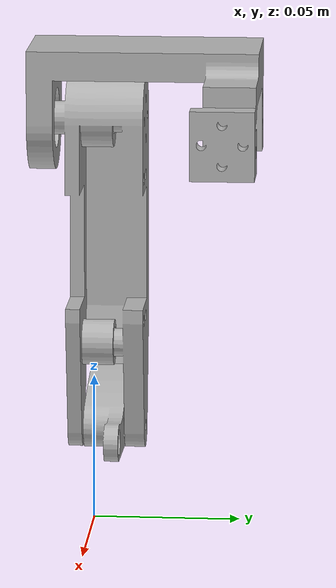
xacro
<?xml version="1.0" ?>
<robot name="leg2" xmlns:xacro="http://www.ros.org/wiki/xacro">

<xacro:include filename="$(find leg2_description)/urdf/materials.xacro" />
<xacro:include filename="$(find leg2_description)/urdf/leg2.trans" />
<xacro:include filename="$(find leg2_description)/urdf/leg2.gazebo" />
<link name="base_link">
  <inertial>
    <origin rpy="0 0 0" xyz="-0.035178677173068926 0.020361442759306778 0.14526924522292778"/>
    <mass value="0.07098555583740974"/>
    <inertia ixx="6.2e-05" ixy="-1e-05" ixz="4e-06" iyy="3.1e-05" iyz="2e-06" izz="7.5e-05"/>
  </inertial>
  <visual>
    <origin rpy="0 0 0" xyz="0 0 0"/>
    <geometry>
      <mesh filename="package://leg2_description/meshes/base_link.stl" scale="0.001 0.001 0.001"/>
    </geometry>
    <material name="silver"/>
  </visual>
  <collision>
    <origin rpy="0 0 0" xyz="0 0 0"/>
    <geometry>
      <mesh filename="package://leg2_description/meshes/base_link.stl" scale="0.001 0.001 0.001"/>
    </geometry>
  </collision>
</link>

<link name="thigh_1">
  <inertial>
    <origin rpy="0 0 0" xyz="-0.002104361960605823 0.017651626772934526 -0.042462025219402164"/>
    <mass value="0.058833278634128135"/>
    <inertia ixx="9.7e-05" ixy="0.0" ixz="-0.0" iyy="9.5e-05" iyz="1e-06" izz="9e-06"/>
  </inertial>
  <visual>
    <origin rpy="0 0 0" xyz="0.04079 0.016228 -0.132102"/>
    <geometry>
      <mesh filename="package://leg2_description/meshes/thigh_1.stl" scale="0.001 0.001 0.001"/>
    </geometry>
    <material name="silver"/>
  </visual>
  <collision>
    <origin rpy="0 0 0" xyz="0.04079 0.016228 -0.132102"/>
    <geometry>
      <mesh filename="package://leg2_description/meshes/thigh_1.stl" scale="0.001 0.001 0.001"/>
    </geometry>
  </collision>
</link>

<link name="tibia_1">
  <inertial>
    <origin rpy="0 0 0" xyz="-0.04986439883191778 0.008578809581268974 0.0052722228367173135"/>
    <mass value="0.028136989763679243"/>
    <inertia ixx="1e-06" ixy="-0.0" ixz="1e-06" iyy="4.3e-05" iyz="0.0" izz="4.2e-05"/>
  </inertial>
  <visual>
    <origin rpy="0 0 0" xyz="0.04079 0.007228 -0.022102"/>
    <geometry>
      <mesh filename="package://leg2_description/meshes/tibia_1.stl" scale="0.001 0.001 0.001"/>
    </geometry>
    <material name="silver"/>
  </visual>
  <collision>
    <origin rpy="0 0 0" xyz="0.04079 0.007228 -0.022102"/>
    <geometry>
      <mesh filename="package://leg2_description/meshes/tibia_1.stl" scale="0.001 0.001 0.001"/>
    </geometry>
  </collision>
</link>

<joint name="Rev16" type="continuous">
  <origin rpy="0 0 0" xyz="-0.04079 -0.016228 0.132102"/>
  <parent link="base_link"/>
  <child link="thigh_1"/>
  <axis xyz="2e-06 1.0 0.0"/>
</joint>

<joint name="Rev17" type="continuous">
  <origin rpy="0 0 0" xyz="0.0 0.009 -0.11"/>
  <parent link="thigh_1"/>
  <child link="tibia_1"/>
  <axis xyz="-2e-06 -1.0 -0.0"/>
</joint>

</robot>

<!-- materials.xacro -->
<robot name="leg2" xmlns:xacro="http://www.ros.org/wiki/xacro" >

<material name="silver">
  <color rgba="0.700 0.700 0.700 1.000"/>
</material>

</robot>

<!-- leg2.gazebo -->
<robot name="leg2" xmlns:xacro="http://www.ros.org/wiki/xacro" >

<xacro:property name="body_color" value="Gazebo/Silver" />

<gazebo>
  <plugin filename="libgazebo_ros_control.so" name="control"/>
</gazebo>
<gazebo reference="base_link">
  <material>${body_color}</material>
  <mu1>0.2</mu1>
  <mu2>0.2</mu2>
  <selfCollide>true</selfCollide>
  <gravity>true</gravity>
</gazebo>

<gazebo reference="thigh_1">
  <material>${body_color}</material>
  <mu1>0.2</mu1>
  <mu2>0.2</mu2>
  <selfCollide>true</selfCollide>
</gazebo>

<gazebo reference="tibia_1">
  <material>${body_color}</material>
  <mu1>0.2</mu1>
  <mu2>0.2</mu2>
  <selfCollide>true</selfCollide>
</gazebo>

</robot>
